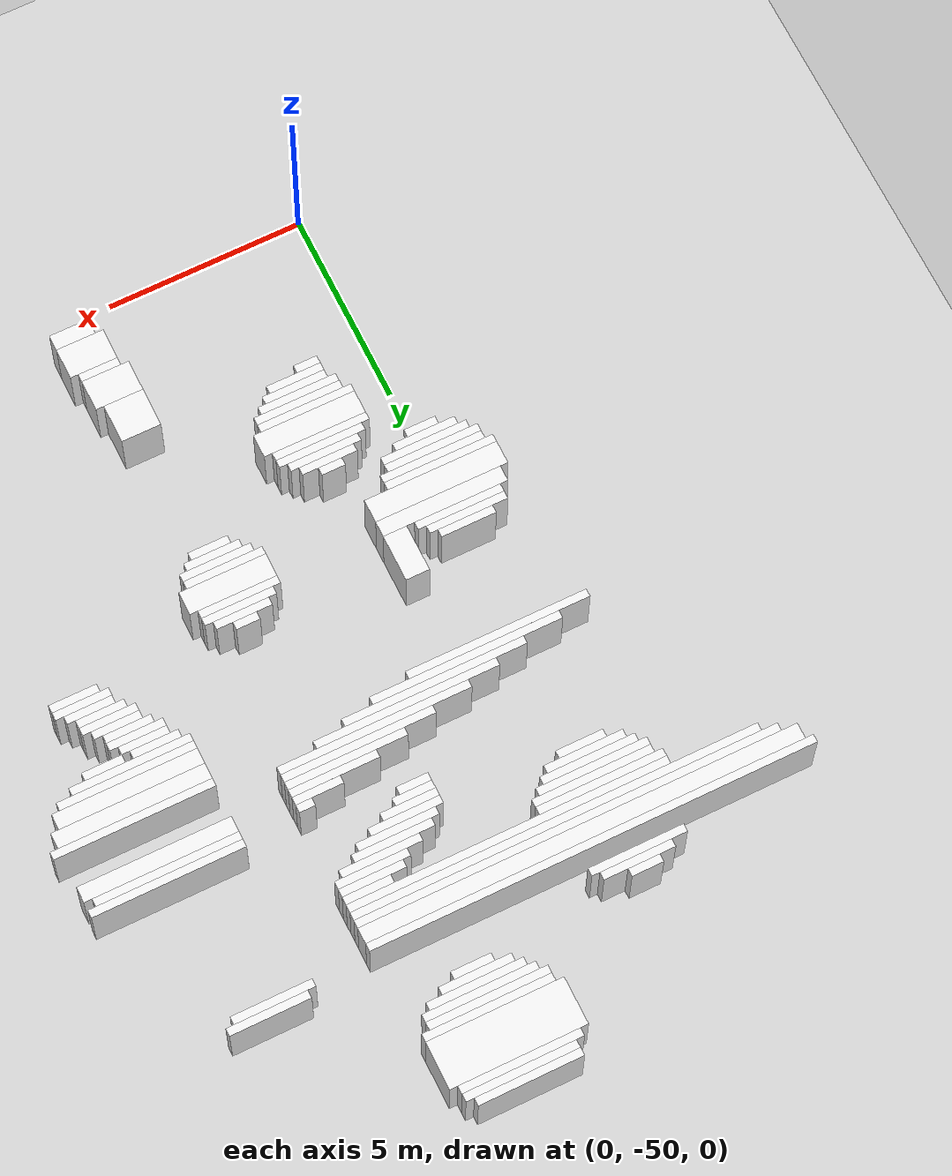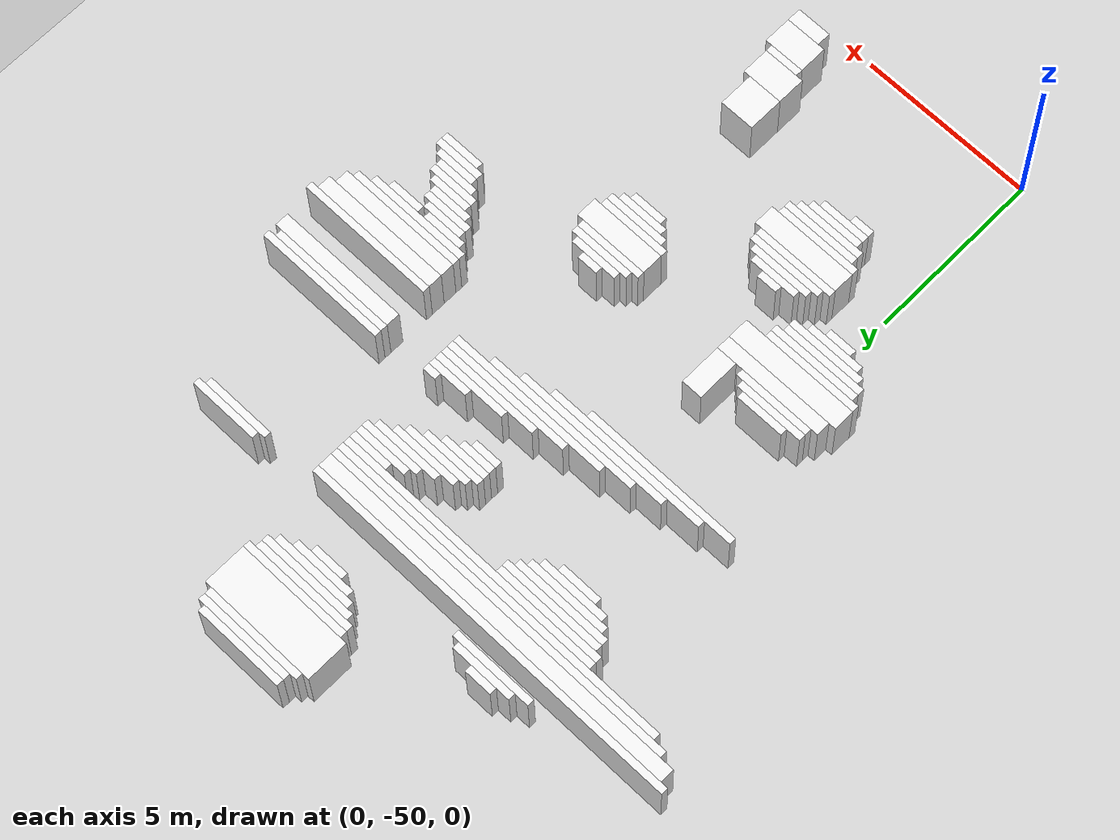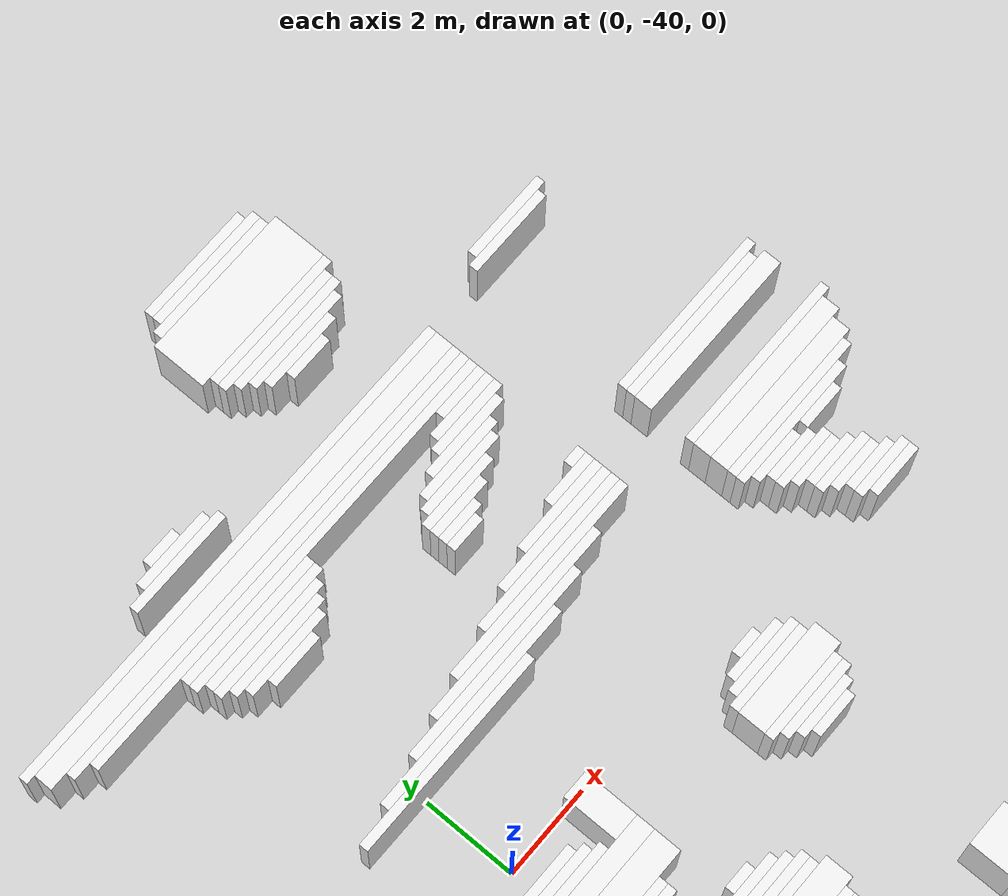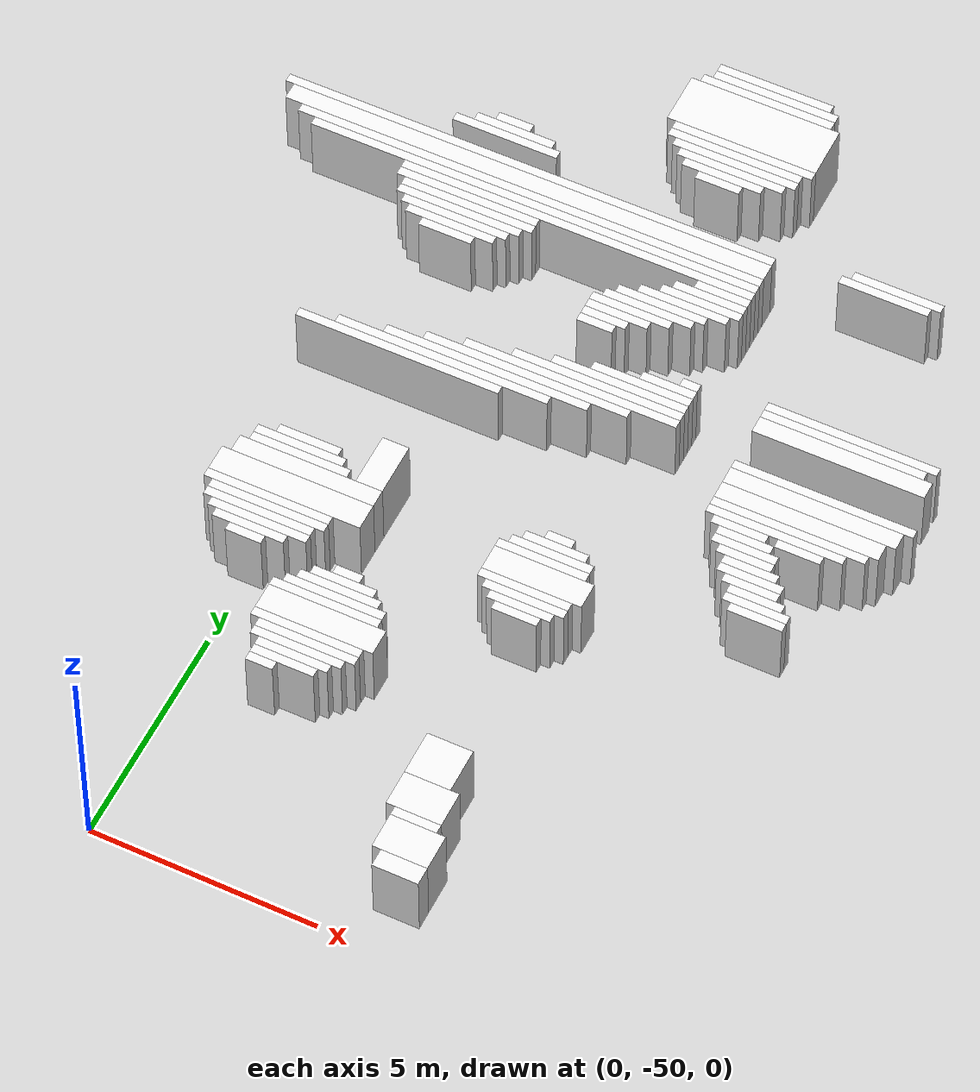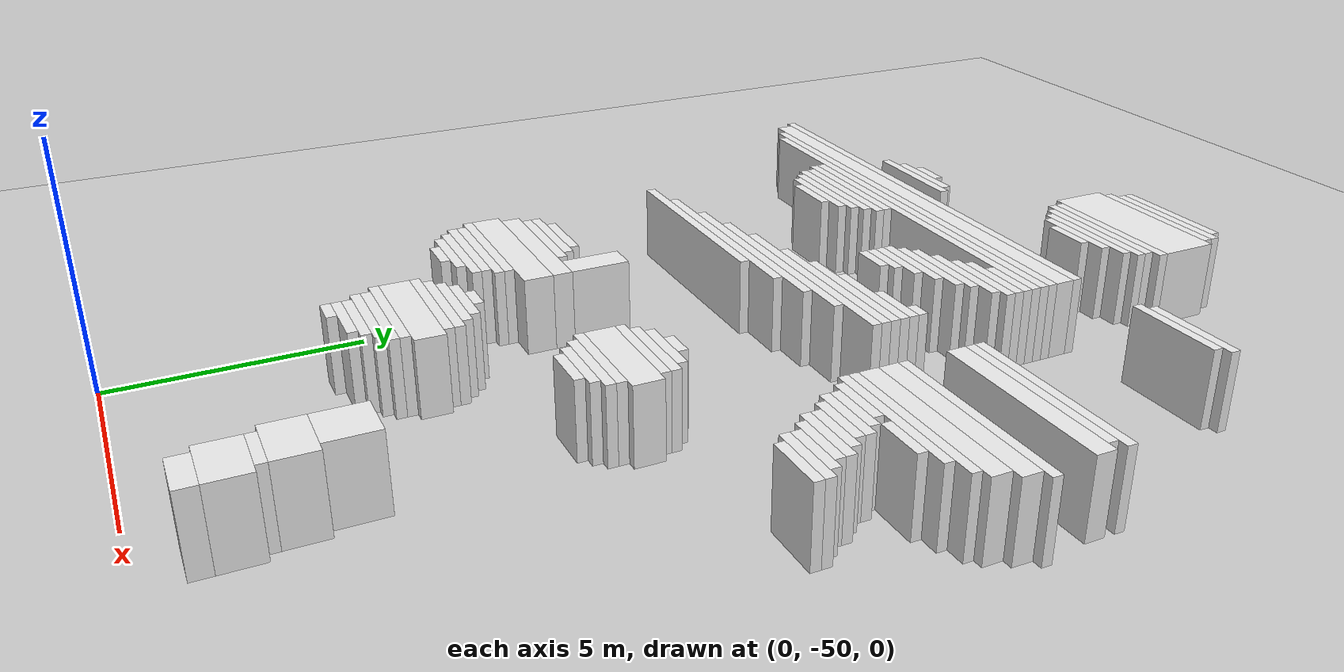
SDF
<sdf version="1.7">
 <world name="default">
  <model name="ground_plane">
   <static>1</static>
   <link name="link">
    <collision name="collision">
     <geometry><plane><normal>0 0 1</normal><size>120 120</size></plane></geometry>
    </collision>
    <visual name="visual">
     <geometry><plane><normal>0 0 1</normal><size>120 120</size></plane></geometry>
     <material>
      <script><uri>file://media/materials/scripts/gazebo.material</uri><name>Gazebo/Grey</name></script>
     </material>
    </visual>
   </link>
  </model>
  <model name="random_complex_01_model">
   <static>1</static>
   <link name="obs_2872">
    <pose>4.7000 -28.3000 0.8000 0 0 0</pose>
    <collision name="obs_2872_col"><geometry><box><size>2.6000 0.2000 1.6000</size></box></geometry></collision>
    <visual name="obs_2872_vis">
     <geometry><box><size>2.6000 0.2000 1.6000</size></box></geometry>
     <material>
      <script><uri>file://media/materials/scripts/gazebo.material</uri><name>Gazebo/White</name></script>
     </material>
    </visual>
   </link>
   <link name="obs_2881">
    <pose>4.8000 -28.5000 0.8000 0 0 0</pose>
    <collision name="obs_2881_col"><geometry><box><size>2.8000 0.2000 1.6000</size></box></geometry></collision>
    <visual name="obs_2881_vis">
     <geometry><box><size>2.8000 0.2000 1.6000</size></box></geometry>
     <material>
      <script><uri>file://media/materials/scripts/gazebo.material</uri><name>Gazebo/White</name></script>
     </material>
    </visual>
   </link>
   <link name="obs_2892">
    <pose>4.7000 -28.7000 0.8000 0 0 0</pose>
    <collision name="obs_2892_col"><geometry><box><size>3.0000 0.2000 1.6000</size></box></geometry></collision>
    <visual name="obs_2892_vis">
     <geometry><box><size>3.0000 0.2000 1.6000</size></box></geometry>
     <material>
      <script><uri>file://media/materials/scripts/gazebo.material</uri><name>Gazebo/White</name></script>
     </material>
    </visual>
   </link>
   <link name="obs_2928">
    <pose>4.7000 -29.4000 0.8000 0 0 0</pose>
    <collision name="obs_2928_col"><geometry><box><size>3.4000 1.2000 1.6000</size></box></geometry></collision>
    <visual name="obs_2928_vis">
     <geometry><box><size>3.4000 1.2000 1.6000</size></box></geometry>
     <material>
      <script><uri>file://media/materials/scripts/gazebo.material</uri><name>Gazebo/White</name></script>
     </material>
    </visual>
   </link>
   <link name="obs_2939">
    <pose>4.8000 -30.1000 0.8000 0 0 0</pose>
    <collision name="obs_2939_col"><geometry><box><size>3.2000 0.2000 1.6000</size></box></geometry></collision>
    <visual name="obs_2939_vis">
     <geometry><box><size>3.2000 0.2000 1.6000</size></box></geometry>
     <material>
      <script><uri>file://media/materials/scripts/gazebo.material</uri><name>Gazebo/White</name></script>
     </material>
    </visual>
   </link>
   <link name="obs_2945">
    <pose>4.7000 -30.3000 0.8000 0 0 0</pose>
    <collision name="obs_2945_col"><geometry><box><size>3.0000 0.2000 1.6000</size></box></geometry></collision>
    <visual name="obs_2945_vis">
     <geometry><box><size>3.0000 0.2000 1.6000</size></box></geometry>
     <material>
      <script><uri>file://media/materials/scripts/gazebo.material</uri><name>Gazebo/White</name></script>
     </material>
    </visual>
   </link>
   <link name="obs_2951">
    <pose>4.8000 -30.5000 0.8000 0 0 0</pose>
    <collision name="obs_2951_col"><geometry><box><size>2.8000 0.2000 1.6000</size></box></geometry></collision>
    <visual name="obs_2951_vis">
     <geometry><box><size>2.8000 0.2000 1.6000</size></box></geometry>
     <material>
      <script><uri>file://media/materials/scripts/gazebo.material</uri><name>Gazebo/White</name></script>
     </material>
    </visual>
   </link>
   <link name="obs_2959">
    <pose>4.8000 -30.7000 0.8000 0 0 0</pose>
    <collision name="obs_2959_col"><geometry><box><size>2.4000 0.2000 1.6000</size></box></geometry></collision>
    <visual name="obs_2959_vis">
     <geometry><box><size>2.4000 0.2000 1.6000</size></box></geometry>
     <material>
      <script><uri>file://media/materials/scripts/gazebo.material</uri><name>Gazebo/White</name></script>
     </material>
    </visual>
   </link>
   <link name="obs_2967">
    <pose>4.7000 -30.9000 0.8000 0 0 0</pose>
    <collision name="obs_2967_col"><geometry><box><size>1.8000 0.2000 1.6000</size></box></geometry></collision>
    <visual name="obs_2967_vis">
     <geometry><box><size>1.8000 0.2000 1.6000</size></box></geometry>
     <material>
      <script><uri>file://media/materials/scripts/gazebo.material</uri><name>Gazebo/White</name></script>
     </material>
    </visual>
   </link>
   <link name="obs_2973">
    <pose>4.7000 -31.1000 0.8000 0 0 0</pose>
    <collision name="obs_2973_col"><geometry><box><size>1.0000 0.2000 1.6000</size></box></geometry></collision>
    <visual name="obs_2973_vis">
     <geometry><box><size>1.0000 0.2000 1.6000</size></box></geometry>
     <material>
      <script><uri>file://media/materials/scripts/gazebo.material</uri><name>Gazebo/White</name></script>
     </material>
    </visual>
   </link>
   <link name="obs_2984">
    <pose>0.2000 -31.5000 0.8000 0 0 0</pose>
    <collision name="obs_2984_col"><geometry><box><size>0.8000 0.2000 1.6000</size></box></geometry></collision>
    <visual name="obs_2984_vis">
     <geometry><box><size>0.8000 0.2000 1.6000</size></box></geometry>
     <material>
      <script><uri>file://media/materials/scripts/gazebo.material</uri><name>Gazebo/White</name></script>
     </material>
    </visual>
   </link>
   <link name="obs_2989">
    <pose>0.3000 -31.7000 0.8000 0 0 0</pose>
    <collision name="obs_2989_col"><geometry><box><size>1.8000 0.2000 1.6000</size></box></geometry></collision>
    <visual name="obs_2989_vis">
     <geometry><box><size>1.8000 0.2000 1.6000</size></box></geometry>
     <material>
      <script><uri>file://media/materials/scripts/gazebo.material</uri><name>Gazebo/White</name></script>
     </material>
    </visual>
   </link>
   <link name="obs_2996">
    <pose>0.2000 -31.9000 0.8000 0 0 0</pose>
    <collision name="obs_2996_col"><geometry><box><size>2.4000 0.2000 1.6000</size></box></geometry></collision>
    <visual name="obs_2996_vis">
     <geometry><box><size>2.4000 0.2000 1.6000</size></box></geometry>
     <material>
      <script><uri>file://media/materials/scripts/gazebo.material</uri><name>Gazebo/White</name></script>
     </material>
    </visual>
   </link>
   <link name="obs_3003">
    <pose>9.2000 -32.1000 0.8000 0 0 0</pose>
    <collision name="obs_3003_col"><geometry><box><size>2.0000 0.2000 1.6000</size></box></geometry></collision>
    <visual name="obs_3003_vis">
     <geometry><box><size>2.0000 0.2000 1.6000</size></box></geometry>
     <material>
      <script><uri>file://media/materials/scripts/gazebo.material</uri><name>Gazebo/White</name></script>
     </material>
    </visual>
   </link>
   <link name="obs_3010">
    <pose>9.0000 -32.3000 0.8000 0 0 0</pose>
    <collision name="obs_3010_col"><geometry><box><size>2.0000 0.2000 1.6000</size></box></geometry></collision>
    <visual name="obs_3010_vis">
     <geometry><box><size>2.0000 0.2000 1.6000</size></box></geometry>
     <material>
      <script><uri>file://media/materials/scripts/gazebo.material</uri><name>Gazebo/White</name></script>
     </material>
    </visual>
   </link>
   <link name="obs_3019">
    <pose>1.0000 -32.5000 0.8000 0 0 0</pose>
    <collision name="obs_3019_col"><geometry><box><size>11.2000 0.2000 1.6000</size></box></geometry></collision>
    <visual name="obs_3019_vis">
     <geometry><box><size>11.2000 0.2000 1.6000</size></box></geometry>
     <material>
      <script><uri>file://media/materials/scripts/gazebo.material</uri><name>Gazebo/White</name></script>
     </material>
    </visual>
   </link>
   <link name="obs_3028">
    <pose>1.1000 -32.8000 0.8000 0 0 0</pose>
    <collision name="obs_3028_col"><geometry><box><size>11.0000 0.4000 1.6000</size></box></geometry></collision>
    <visual name="obs_3028_vis">
     <geometry><box><size>11.0000 0.4000 1.6000</size></box></geometry>
     <material>
      <script><uri>file://media/materials/scripts/gazebo.material</uri><name>Gazebo/White</name></script>
     </material>
    </visual>
   </link>
   <link name="obs_3040">
    <pose>1.3000 -33.1000 0.8000 0 0 0</pose>
    <collision name="obs_3040_col"><geometry><box><size>10.6000 0.2000 1.6000</size></box></geometry></collision>
    <visual name="obs_3040_vis">
     <geometry><box><size>10.6000 0.2000 1.6000</size></box></geometry>
     <material>
      <script><uri>file://media/materials/scripts/gazebo.material</uri><name>Gazebo/White</name></script>
     </material>
    </visual>
   </link>
   <link name="obs_3050">
    <pose>1.5000 -33.3000 0.8000 0 0 0</pose>
    <collision name="obs_3050_col"><geometry><box><size>10.2000 0.2000 1.6000</size></box></geometry></collision>
    <visual name="obs_3050_vis">
     <geometry><box><size>10.2000 0.2000 1.6000</size></box></geometry>
     <material>
      <script><uri>file://media/materials/scripts/gazebo.material</uri><name>Gazebo/White</name></script>
     </material>
    </visual>
   </link>
   <link name="obs_3057">
    <pose>2.6000 -33.5000 0.8000 0 0 0</pose>
    <collision name="obs_3057_col"><geometry><box><size>8.0000 0.2000 1.6000</size></box></geometry></collision>
    <visual name="obs_3057_vis">
     <geometry><box><size>8.0000 0.2000 1.6000</size></box></geometry>
     <material>
      <script><uri>file://media/materials/scripts/gazebo.material</uri><name>Gazebo/White</name></script>
     </material>
    </visual>
   </link>
   <link name="obs_3064">
    <pose>0.2000 -33.7000 0.8000 0 0 0</pose>
    <collision name="obs_3064_col"><geometry><box><size>3.2000 0.2000 1.6000</size></box></geometry></collision>
    <visual name="obs_3064_vis">
     <geometry><box><size>3.2000 0.2000 1.6000</size></box></geometry>
     <material>
      <script><uri>file://media/materials/scripts/gazebo.material</uri><name>Gazebo/White</name></script>
     </material>
    </visual>
   </link>
   <link name="obs_3065">
    <pose>6.0000 -33.7000 0.8000 0 0 0</pose>
    <collision name="obs_3065_col"><geometry><box><size>1.2000 0.2000 1.6000</size></box></geometry></collision>
    <visual name="obs_3065_vis">
     <geometry><box><size>1.2000 0.2000 1.6000</size></box></geometry>
     <material>
      <script><uri>file://media/materials/scripts/gazebo.material</uri><name>Gazebo/White</name></script>
     </material>
    </visual>
   </link>
   <link name="obs_3074">
    <pose>0.3000 -33.9000 0.8000 0 0 0</pose>
    <collision name="obs_3074_col"><geometry><box><size>3.0000 0.2000 1.6000</size></box></geometry></collision>
    <visual name="obs_3074_vis">
     <geometry><box><size>3.0000 0.2000 1.6000</size></box></geometry>
     <material>
      <script><uri>file://media/materials/scripts/gazebo.material</uri><name>Gazebo/White</name></script>
     </material>
    </visual>
   </link>
   <link name="obs_3075">
    <pose>5.8000 -33.9000 0.8000 0 0 0</pose>
    <collision name="obs_3075_col"><geometry><box><size>1.6000 0.2000 1.6000</size></box></geometry></collision>
    <visual name="obs_3075_vis">
     <geometry><box><size>1.6000 0.2000 1.6000</size></box></geometry>
     <material>
      <script><uri>file://media/materials/scripts/gazebo.material</uri><name>Gazebo/White</name></script>
     </material>
    </visual>
   </link>
   <link name="obs_3082">
    <pose>0.2000 -34.1000 0.8000 0 0 0</pose>
    <collision name="obs_3082_col"><geometry><box><size>2.8000 0.2000 1.6000</size></box></geometry></collision>
    <visual name="obs_3082_vis">
     <geometry><box><size>2.8000 0.2000 1.6000</size></box></geometry>
     <material>
      <script><uri>file://media/materials/scripts/gazebo.material</uri><name>Gazebo/White</name></script>
     </material>
    </visual>
   </link>
   <link name="obs_3083">
    <pose>5.7000 -34.1000 0.8000 0 0 0</pose>
    <collision name="obs_3083_col"><geometry><box><size>1.8000 0.2000 1.6000</size></box></geometry></collision>
    <visual name="obs_3083_vis">
     <geometry><box><size>1.8000 0.2000 1.6000</size></box></geometry>
     <material>
      <script><uri>file://media/materials/scripts/gazebo.material</uri><name>Gazebo/White</name></script>
     </material>
    </visual>
   </link>
   <link name="obs_3089">
    <pose>0.2000 -34.3000 0.8000 0 0 0</pose>
    <collision name="obs_3089_col"><geometry><box><size>2.4000 0.2000 1.6000</size></box></geometry></collision>
    <visual name="obs_3089_vis">
     <geometry><box><size>2.4000 0.2000 1.6000</size></box></geometry>
     <material>
      <script><uri>file://media/materials/scripts/gazebo.material</uri><name>Gazebo/White</name></script>
     </material>
    </visual>
   </link>
   <link name="obs_3090">
    <pose>5.4000 -34.3000 0.8000 0 0 0</pose>
    <collision name="obs_3090_col"><geometry><box><size>2.0000 0.2000 1.6000</size></box></geometry></collision>
    <visual name="obs_3090_vis">
     <geometry><box><size>2.0000 0.2000 1.6000</size></box></geometry>
     <material>
      <script><uri>file://media/materials/scripts/gazebo.material</uri><name>Gazebo/White</name></script>
     </material>
    </visual>
   </link>
   <link name="obs_3094">
    <pose>0.2000 -34.5000 0.8000 0 0 0</pose>
    <collision name="obs_3094_col"><geometry><box><size>2.0000 0.2000 1.6000</size></box></geometry></collision>
    <visual name="obs_3094_vis">
     <geometry><box><size>2.0000 0.2000 1.6000</size></box></geometry>
     <material>
      <script><uri>file://media/materials/scripts/gazebo.material</uri><name>Gazebo/White</name></script>
     </material>
    </visual>
   </link>
   <link name="obs_3095">
    <pose>5.0000 -34.5000 0.8000 0 0 0</pose>
    <collision name="obs_3095_col"><geometry><box><size>2.0000 0.2000 1.6000</size></box></geometry></collision>
    <visual name="obs_3095_vis">
     <geometry><box><size>2.0000 0.2000 1.6000</size></box></geometry>
     <material>
      <script><uri>file://media/materials/scripts/gazebo.material</uri><name>Gazebo/White</name></script>
     </material>
    </visual>
   </link>
   <link name="obs_3100">
    <pose>0.2000 -34.7000 0.8000 0 0 0</pose>
    <collision name="obs_3100_col"><geometry><box><size>1.2000 0.2000 1.6000</size></box></geometry></collision>
    <visual name="obs_3100_vis">
     <geometry><box><size>1.2000 0.2000 1.6000</size></box></geometry>
     <material>
      <script><uri>file://media/materials/scripts/gazebo.material</uri><name>Gazebo/White</name></script>
     </material>
    </visual>
   </link>
   <link name="obs_3101">
    <pose>4.8000 -34.7000 0.8000 0 0 0</pose>
    <collision name="obs_3101_col"><geometry><box><size>2.0000 0.2000 1.6000</size></box></geometry></collision>
    <visual name="obs_3101_vis">
     <geometry><box><size>2.0000 0.2000 1.6000</size></box></geometry>
     <material>
      <script><uri>file://media/materials/scripts/gazebo.material</uri><name>Gazebo/White</name></script>
     </material>
    </visual>
   </link>
   <link name="obs_3112">
    <pose>4.5000 -34.9000 0.8000 0 0 0</pose>
    <collision name="obs_3112_col"><geometry><box><size>1.8000 0.2000 1.6000</size></box></geometry></collision>
    <visual name="obs_3112_vis">
     <geometry><box><size>1.8000 0.2000 1.6000</size></box></geometry>
     <material>
      <script><uri>file://media/materials/scripts/gazebo.material</uri><name>Gazebo/White</name></script>
     </material>
    </visual>
   </link>
   <link name="obs_3118">
    <pose>4.3000 -35.1000 0.8000 0 0 0</pose>
    <collision name="obs_3118_col"><geometry><box><size>1.4000 0.2000 1.6000</size></box></geometry></collision>
    <visual name="obs_3118_vis">
     <geometry><box><size>1.4000 0.2000 1.6000</size></box></geometry>
     <material>
      <script><uri>file://media/materials/scripts/gazebo.material</uri><name>Gazebo/White</name></script>
     </material>
    </visual>
   </link>
   <link name="obs_3125">
    <pose>4.1000 -35.3000 0.8000 0 0 0</pose>
    <collision name="obs_3125_col"><geometry><box><size>1.0000 0.2000 1.6000</size></box></geometry></collision>
    <visual name="obs_3125_vis">
     <geometry><box><size>1.0000 0.2000 1.6000</size></box></geometry>
     <material>
      <script><uri>file://media/materials/scripts/gazebo.material</uri><name>Gazebo/White</name></script>
     </material>
    </visual>
   </link>
   <link name="obs_3134">
    <pose>4.0000 -35.5000 0.8000 0 0 0</pose>
    <collision name="obs_3134_col"><geometry><box><size>0.8000 0.2000 1.6000</size></box></geometry></collision>
    <visual name="obs_3134_vis">
     <geometry><box><size>0.8000 0.2000 1.6000</size></box></geometry>
     <material>
      <script><uri>file://media/materials/scripts/gazebo.material</uri><name>Gazebo/White</name></script>
     </material>
    </visual>
   </link>
   <link name="obs_3150">
    <pose>9.9000 -35.9000 0.8000 0 0 0</pose>
    <collision name="obs_3150_col"><geometry><box><size>3.8000 0.2000 1.6000</size></box></geometry></collision>
    <visual name="obs_3150_vis">
     <geometry><box><size>3.8000 0.2000 1.6000</size></box></geometry>
     <material>
      <script><uri>file://media/materials/scripts/gazebo.material</uri><name>Gazebo/White</name></script>
     </material>
    </visual>
   </link>
   <link name="obs_3159">
    <pose>6.4000 -36.1000 0.8000 0 0 0</pose>
    <collision name="obs_3159_col"><geometry><box><size>0.4000 0.2000 1.6000</size></box></geometry></collision>
    <visual name="obs_3159_vis">
     <geometry><box><size>0.4000 0.2000 1.6000</size></box></geometry>
     <material>
      <script><uri>file://media/materials/scripts/gazebo.material</uri><name>Gazebo/White</name></script>
     </material>
    </visual>
   </link>
   <link name="obs_3160">
    <pose>9.8000 -36.1000 0.8000 0 0 0</pose>
    <collision name="obs_3160_col"><geometry><box><size>3.6000 0.2000 1.6000</size></box></geometry></collision>
    <visual name="obs_3160_vis">
     <geometry><box><size>3.6000 0.2000 1.6000</size></box></geometry>
     <material>
      <script><uri>file://media/materials/scripts/gazebo.material</uri><name>Gazebo/White</name></script>
     </material>
    </visual>
   </link>
   <link name="obs_3166">
    <pose>6.0000 -36.3000 0.8000 0 0 0</pose>
    <collision name="obs_3166_col"><geometry><box><size>1.2000 0.2000 1.6000</size></box></geometry></collision>
    <visual name="obs_3166_vis">
     <geometry><box><size>1.2000 0.2000 1.6000</size></box></geometry>
     <material>
      <script><uri>file://media/materials/scripts/gazebo.material</uri><name>Gazebo/White</name></script>
     </material>
    </visual>
   </link>
   <link name="obs_3168">
    <pose>9.9000 -36.4000 0.8000 0 0 0</pose>
    <collision name="obs_3168_col"><geometry><box><size>3.8000 0.4000 1.6000</size></box></geometry></collision>
    <visual name="obs_3168_vis">
     <geometry><box><size>3.8000 0.4000 1.6000</size></box></geometry>
     <material>
      <script><uri>file://media/materials/scripts/gazebo.material</uri><name>Gazebo/White</name></script>
     </material>
    </visual>
   </link>
   <link name="obs_3172">
    <pose>5.5000 -36.5000 0.8000 0 0 0</pose>
    <collision name="obs_3172_col"><geometry><box><size>2.2000 0.2000 1.6000</size></box></geometry></collision>
    <visual name="obs_3172_vis">
     <geometry><box><size>2.2000 0.2000 1.6000</size></box></geometry>
     <material>
      <script><uri>file://media/materials/scripts/gazebo.material</uri><name>Gazebo/White</name></script>
     </material>
    </visual>
   </link>
   <link name="obs_3179">
    <pose>5.1000 -36.7000 0.8000 0 0 0</pose>
    <collision name="obs_3179_col"><geometry><box><size>3.0000 0.2000 1.6000</size></box></geometry></collision>
    <visual name="obs_3179_vis">
     <geometry><box><size>3.0000 0.2000 1.6000</size></box></geometry>
     <material>
      <script><uri>file://media/materials/scripts/gazebo.material</uri><name>Gazebo/White</name></script>
     </material>
    </visual>
   </link>
   <link name="obs_3186">
    <pose>4.7000 -36.9000 0.8000 0 0 0</pose>
    <collision name="obs_3186_col"><geometry><box><size>3.8000 0.2000 1.6000</size></box></geometry></collision>
    <visual name="obs_3186_vis">
     <geometry><box><size>3.8000 0.2000 1.6000</size></box></geometry>
     <material>
      <script><uri>file://media/materials/scripts/gazebo.material</uri><name>Gazebo/White</name></script>
     </material>
    </visual>
   </link>
   <link name="obs_3191">
    <pose>4.2000 -37.1000 0.8000 0 0 0</pose>
    <collision name="obs_3191_col"><geometry><box><size>4.8000 0.2000 1.6000</size></box></geometry></collision>
    <visual name="obs_3191_vis">
     <geometry><box><size>4.8000 0.2000 1.6000</size></box></geometry>
     <material>
      <script><uri>file://media/materials/scripts/gazebo.material</uri><name>Gazebo/White</name></script>
     </material>
    </visual>
   </link>
   <link name="obs_3201">
    <pose>3.3000 -37.3000 0.8000 0 0 0</pose>
    <collision name="obs_3201_col"><geometry><box><size>4.6000 0.2000 1.6000</size></box></geometry></collision>
    <visual name="obs_3201_vis">
     <geometry><box><size>4.6000 0.2000 1.6000</size></box></geometry>
     <material>
      <script><uri>file://media/materials/scripts/gazebo.material</uri><name>Gazebo/White</name></script>
     </material>
    </visual>
   </link>
   <link name="obs_3207">
    <pose>2.5000 -37.5000 0.8000 0 0 0</pose>
    <collision name="obs_3207_col"><geometry><box><size>4.6000 0.2000 1.6000</size></box></geometry></collision>
    <visual name="obs_3207_vis">
     <geometry><box><size>4.6000 0.2000 1.6000</size></box></geometry>
     <material>
      <script><uri>file://media/materials/scripts/gazebo.material</uri><name>Gazebo/White</name></script>
     </material>
    </visual>
   </link>
   <link name="obs_3208">
    <pose>10.0000 -37.5000 0.8000 0 0 0</pose>
    <collision name="obs_3208_col"><geometry><box><size>4.0000 0.2000 1.6000</size></box></geometry></collision>
    <visual name="obs_3208_vis">
     <geometry><box><size>4.0000 0.2000 1.6000</size></box></geometry>
     <material>
      <script><uri>file://media/materials/scripts/gazebo.material</uri><name>Gazebo/White</name></script>
     </material>
    </visual>
   </link>
   <link name="obs_3215">
    <pose>1.6000 -37.7000 0.8000 0 0 0</pose>
    <collision name="obs_3215_col"><geometry><box><size>4.8000 0.2000 1.6000</size></box></geometry></collision>
    <visual name="obs_3215_vis">
     <geometry><box><size>4.8000 0.2000 1.6000</size></box></geometry>
     <material>
      <script><uri>file://media/materials/scripts/gazebo.material</uri><name>Gazebo/White</name></script>
     </material>
    </visual>
   </link>
   <link name="obs_3219">
    <pose>9.9000 -37.8000 0.8000 0 0 0</pose>
    <collision name="obs_3219_col"><geometry><box><size>3.8000 0.4000 1.6000</size></box></geometry></collision>
    <visual name="obs_3219_vis">
     <geometry><box><size>3.8000 0.4000 1.6000</size></box></geometry>
     <material>
      <script><uri>file://media/materials/scripts/gazebo.material</uri><name>Gazebo/White</name></script>
     </material>
    </visual>
   </link>
   <link name="obs_3224">
    <pose>0.7000 -37.9000 0.8000 0 0 0</pose>
    <collision name="obs_3224_col"><geometry><box><size>4.6000 0.2000 1.6000</size></box></geometry></collision>
    <visual name="obs_3224_vis">
     <geometry><box><size>4.6000 0.2000 1.6000</size></box></geometry>
     <material>
      <script><uri>file://media/materials/scripts/gazebo.material</uri><name>Gazebo/White</name></script>
     </material>
    </visual>
   </link>
   <link name="obs_3235">
    <pose>9.8000 -38.2000 0.8000 0 0 0</pose>
    <collision name="obs_3235_col"><geometry><box><size>3.6000 0.4000 1.6000</size></box></geometry></collision>
    <visual name="obs_3235_vis">
     <geometry><box><size>3.6000 0.4000 1.6000</size></box></geometry>
     <material>
      <script><uri>file://media/materials/scripts/gazebo.material</uri><name>Gazebo/White</name></script>
     </material>
    </visual>
   </link>
   <link name="obs_3250">
    <pose>9.7000 -38.5000 0.8000 0 0 0</pose>
    <collision name="obs_3250_col"><geometry><box><size>3.4000 0.2000 1.6000</size></box></geometry></collision>
    <visual name="obs_3250_vis">
     <geometry><box><size>3.4000 0.2000 1.6000</size></box></geometry>
     <material>
      <script><uri>file://media/materials/scripts/gazebo.material</uri><name>Gazebo/White</name></script>
     </material>
    </visual>
   </link>
   <link name="obs_3255">
    <pose>9.5000 -38.7000 0.8000 0 0 0</pose>
    <collision name="obs_3255_col"><geometry><box><size>3.0000 0.2000 1.6000</size></box></geometry></collision>
    <visual name="obs_3255_vis">
     <geometry><box><size>3.0000 0.2000 1.6000</size></box></geometry>
     <material>
      <script><uri>file://media/materials/scripts/gazebo.material</uri><name>Gazebo/White</name></script>
     </material>
    </visual>
   </link>
   <link name="obs_3262">
    <pose>8.8000 -38.9000 0.8000 0 0 0</pose>
    <collision name="obs_3262_col"><geometry><box><size>1.2000 0.2000 1.6000</size></box></geometry></collision>
    <visual name="obs_3262_vis">
     <geometry><box><size>1.2000 0.2000 1.6000</size></box></geometry>
     <material>
      <script><uri>file://media/materials/scripts/gazebo.material</uri><name>Gazebo/White</name></script>
     </material>
    </visual>
   </link>
   <link name="obs_3263">
    <pose>10.1000 -38.9000 0.8000 0 0 0</pose>
    <collision name="obs_3263_col"><geometry><box><size>1.0000 0.2000 1.6000</size></box></geometry></collision>
    <visual name="obs_3263_vis">
     <geometry><box><size>1.0000 0.2000 1.6000</size></box></geometry>
     <material>
      <script><uri>file://media/materials/scripts/gazebo.material</uri><name>Gazebo/White</name></script>
     </material>
    </visual>
   </link>
   <link name="obs_3270">
    <pose>9.0000 -39.1000 0.8000 0 0 0</pose>
    <collision name="obs_3270_col"><geometry><box><size>1.2000 0.2000 1.6000</size></box></geometry></collision>
    <visual name="obs_3270_vis">
     <geometry><box><size>1.2000 0.2000 1.6000</size></box></geometry>
     <material>
      <script><uri>file://media/materials/scripts/gazebo.material</uri><name>Gazebo/White</name></script>
     </material>
    </visual>
   </link>
   <link name="obs_3278">
    <pose>9.1000 -39.3000 0.8000 0 0 0</pose>
    <collision name="obs_3278_col"><geometry><box><size>1.4000 0.2000 1.6000</size></box></geometry></collision>
    <visual name="obs_3278_vis">
     <geometry><box><size>1.4000 0.2000 1.6000</size></box></geometry>
     <material>
      <script><uri>file://media/materials/scripts/gazebo.material</uri><name>Gazebo/White</name></script>
     </material>
    </visual>
   </link>
   <link name="obs_3282">
    <pose>9.2000 -39.5000 0.8000 0 0 0</pose>
    <collision name="obs_3282_col"><geometry><box><size>1.2000 0.2000 1.6000</size></box></geometry></collision>
    <visual name="obs_3282_vis">
     <geometry><box><size>1.2000 0.2000 1.6000</size></box></geometry>
     <material>
      <script><uri>file://media/materials/scripts/gazebo.material</uri><name>Gazebo/White</name></script>
     </material>
    </visual>
   </link>
   <link name="obs_3290">
    <pose>9.4000 -39.7000 0.8000 0 0 0</pose>
    <collision name="obs_3290_col"><geometry><box><size>1.2000 0.2000 1.6000</size></box></geometry></collision>
    <visual name="obs_3290_vis">
     <geometry><box><size>1.2000 0.2000 1.6000</size></box></geometry>
     <material>
      <script><uri>file://media/materials/scripts/gazebo.material</uri><name>Gazebo/White</name></script>
     </material>
    </visual>
   </link>
   <link name="obs_3296">
    <pose>9.5000 -39.9000 0.8000 0 0 0</pose>
    <collision name="obs_3296_col"><geometry><box><size>1.4000 0.2000 1.6000</size></box></geometry></collision>
    <visual name="obs_3296_vis">
     <geometry><box><size>1.4000 0.2000 1.6000</size></box></geometry>
     <material>
      <script><uri>file://media/materials/scripts/gazebo.material</uri><name>Gazebo/White</name></script>
     </material>
    </visual>
   </link>
   <link name="obs_3303">
    <pose>9.6000 -40.1000 0.8000 0 0 0</pose>
    <collision name="obs_3303_col"><geometry><box><size>1.2000 0.2000 1.6000</size></box></geometry></collision>
    <visual name="obs_3303_vis">
     <geometry><box><size>1.2000 0.2000 1.6000</size></box></geometry>
     <material>
      <script><uri>file://media/materials/scripts/gazebo.material</uri><name>Gazebo/White</name></script>
     </material>
    </visual>
   </link>
   <link name="obs_3311">
    <pose>9.8000 -40.3000 0.8000 0 0 0</pose>
    <collision name="obs_3311_col"><geometry><box><size>1.2000 0.2000 1.6000</size></box></geometry></collision>
    <visual name="obs_3311_vis">
     <geometry><box><size>1.2000 0.2000 1.6000</size></box></geometry>
     <material>
      <script><uri>file://media/materials/scripts/gazebo.material</uri><name>Gazebo/White</name></script>
     </material>
    </visual>
   </link>
   <link name="obs_3319">
    <pose>9.9000 -40.5000 0.8000 0 0 0</pose>
    <collision name="obs_3319_col"><geometry><box><size>1.4000 0.2000 1.6000</size></box></geometry></collision>
    <visual name="obs_3319_vis">
     <geometry><box><size>1.4000 0.2000 1.6000</size></box></geometry>
     <material>
      <script><uri>file://media/materials/scripts/gazebo.material</uri><name>Gazebo/White</name></script>
     </material>
    </visual>
   </link>
   <link name="obs_3327">
    <pose>0.1000 -40.7000 0.8000 0 0 0</pose>
    <collision name="obs_3327_col"><geometry><box><size>1.4000 0.2000 1.6000</size></box></geometry></collision>
    <visual name="obs_3327_vis">
     <geometry><box><size>1.4000 0.2000 1.6000</size></box></geometry>
     <material>
      <script><uri>file://media/materials/scripts/gazebo.material</uri><name>Gazebo/White</name></script>
     </material>
    </visual>
   </link>
   <link name="obs_3328">
    <pose>5.7000 -40.7000 0.8000 0 0 0</pose>
    <collision name="obs_3328_col"><geometry><box><size>0.6000 0.2000 1.6000</size></box></geometry></collision>
    <visual name="obs_3328_vis">
     <geometry><box><size>0.6000 0.2000 1.6000</size></box></geometry>
     <material>
      <script><uri>file://media/materials/scripts/gazebo.material</uri><name>Gazebo/White</name></script>
     </material>
    </visual>
   </link>
   <link name="obs_3329">
    <pose>10.0000 -40.7000 0.8000 0 0 0</pose>
    <collision name="obs_3329_col"><geometry><box><size>1.2000 0.2000 1.6000</size></box></geometry></collision>
    <visual name="obs_3329_vis">
     <geometry><box><size>1.2000 0.2000 1.6000</size></box></geometry>
     <material>
      <script><uri>file://media/materials/scripts/gazebo.material</uri><name>Gazebo/White</name></script>
     </material>
    </visual>
   </link>
   <link name="obs_3336">
    <pose>0.0000 -40.9000 0.8000 0 0 0</pose>
    <collision name="obs_3336_col"><geometry><box><size>2.0000 0.2000 1.6000</size></box></geometry></collision>
    <visual name="obs_3336_vis">
     <geometry><box><size>2.0000 0.2000 1.6000</size></box></geometry>
     <material>
      <script><uri>file://media/materials/scripts/gazebo.material</uri><name>Gazebo/White</name></script>
     </material>
    </visual>
   </link>
   <link name="obs_3337">
    <pose>5.7000 -40.9000 0.8000 0 0 0</pose>
    <collision name="obs_3337_col"><geometry><box><size>1.4000 0.2000 1.6000</size></box></geometry></collision>
    <visual name="obs_3337_vis">
     <geometry><box><size>1.4000 0.2000 1.6000</size></box></geometry>
     <material>
      <script><uri>file://media/materials/scripts/gazebo.material</uri><name>Gazebo/White</name></script>
     </material>
    </visual>
   </link>
   <link name="obs_3340">
    <pose>1.7000 -40.6000 0.8000 0 0 0</pose>
    <collision name="obs_3340_col"><geometry><box><size>0.6000 1.2000 1.6000</size></box></geometry></collision>
    <visual name="obs_3340_vis">
     <geometry><box><size>0.6000 1.2000 1.6000</size></box></geometry>
     <material>
      <script><uri>file://media/materials/scripts/gazebo.material</uri><name>Gazebo/White</name></script>
     </material>
    </visual>
   </link>
   <link name="obs_3343">
    <pose>0.1000 -41.1000 0.8000 0 0 0</pose>
    <collision name="obs_3343_col"><geometry><box><size>2.2000 0.2000 1.6000</size></box></geometry></collision>
    <visual name="obs_3343_vis">
     <geometry><box><size>2.2000 0.2000 1.6000</size></box></geometry>
     <material>
      <script><uri>file://media/materials/scripts/gazebo.material</uri><name>Gazebo/White</name></script>
     </material>
    </visual>
   </link>
   <link name="obs_3344">
    <pose>5.7000 -41.1000 0.8000 0 0 0</pose>
    <collision name="obs_3344_col"><geometry><box><size>1.8000 0.2000 1.6000</size></box></geometry></collision>
    <visual name="obs_3344_vis">
     <geometry><box><size>1.8000 0.2000 1.6000</size></box></geometry>
     <material>
      <script><uri>file://media/materials/scripts/gazebo.material</uri><name>Gazebo/White</name></script>
     </material>
    </visual>
   </link>
   <link name="obs_3350">
    <pose>5.6000 -41.3000 0.8000 0 0 0</pose>
    <collision name="obs_3350_col"><geometry><box><size>2.0000 0.2000 1.6000</size></box></geometry></collision>
    <visual name="obs_3350_vis">
     <geometry><box><size>2.0000 0.2000 1.6000</size></box></geometry>
     <material>
      <script><uri>file://media/materials/scripts/gazebo.material</uri><name>Gazebo/White</name></script>
     </material>
    </visual>
   </link>
   <link name="obs_3356">
    <pose>0.4000 -41.4000 0.8000 0 0 0</pose>
    <collision name="obs_3356_col"><geometry><box><size>3.2000 0.4000 1.6000</size></box></geometry></collision>
    <visual name="obs_3356_vis">
     <geometry><box><size>3.2000 0.4000 1.6000</size></box></geometry>
     <material>
      <script><uri>file://media/materials/scripts/gazebo.material</uri><name>Gazebo/White</name></script>
     </material>
    </visual>
   </link>
   <link name="obs_3369">
    <pose>5.7000 -41.7000 0.8000 0 0 0</pose>
    <collision name="obs_3369_col"><geometry><box><size>2.2000 0.6000 1.6000</size></box></geometry></collision>
    <visual name="obs_3369_vis">
     <geometry><box><size>2.2000 0.6000 1.6000</size></box></geometry>
     <material>
      <script><uri>file://media/materials/scripts/gazebo.material</uri><name>Gazebo/White</name></script>
     </material>
    </visual>
   </link>
   <link name="obs_3378">
    <pose>0.3000 -41.9000 0.8000 0 0 0</pose>
    <collision name="obs_3378_col"><geometry><box><size>3.4000 0.6000 1.6000</size></box></geometry></collision>
    <visual name="obs_3378_vis">
     <geometry><box><size>3.4000 0.6000 1.6000</size></box></geometry>
     <material>
      <script><uri>file://media/materials/scripts/gazebo.material</uri><name>Gazebo/White</name></script>
     </material>
    </visual>
   </link>
   <link name="obs_3382">
    <pose>5.6000 -42.1000 0.8000 0 0 0</pose>
    <collision name="obs_3382_col"><geometry><box><size>2.0000 0.2000 1.6000</size></box></geometry></collision>
    <visual name="obs_3382_vis">
     <geometry><box><size>2.0000 0.2000 1.6000</size></box></geometry>
     <material>
      <script><uri>file://media/materials/scripts/gazebo.material</uri><name>Gazebo/White</name></script>
     </material>
    </visual>
   </link>
   <link name="obs_3390">
    <pose>0.0000 -42.3000 0.8000 0 0 0</pose>
    <collision name="obs_3390_col"><geometry><box><size>2.8000 0.2000 1.6000</size></box></geometry></collision>
    <visual name="obs_3390_vis">
     <geometry><box><size>2.8000 0.2000 1.6000</size></box></geometry>
     <material>
      <script><uri>file://media/materials/scripts/gazebo.material</uri><name>Gazebo/White</name></script>
     </material>
    </visual>
   </link>
   <link name="obs_3391">
    <pose>5.7000 -42.3000 0.8000 0 0 0</pose>
    <collision name="obs_3391_col"><geometry><box><size>1.8000 0.2000 1.6000</size></box></geometry></collision>
    <visual name="obs_3391_vis">
     <geometry><box><size>1.8000 0.2000 1.6000</size></box></geometry>
     <material>
      <script><uri>file://media/materials/scripts/gazebo.material</uri><name>Gazebo/White</name></script>
     </material>
    </visual>
   </link>
   <link name="obs_3398">
    <pose>0.1000 -42.5000 0.8000 0 0 0</pose>
    <collision name="obs_3398_col"><geometry><box><size>2.6000 0.2000 1.6000</size></box></geometry></collision>
    <visual name="obs_3398_vis">
     <geometry><box><size>2.6000 0.2000 1.6000</size></box></geometry>
     <material>
      <script><uri>file://media/materials/scripts/gazebo.material</uri><name>Gazebo/White</name></script>
     </material>
    </visual>
   </link>
   <link name="obs_3399">
    <pose>5.7000 -42.5000 0.8000 0 0 0</pose>
    <collision name="obs_3399_col"><geometry><box><size>1.4000 0.2000 1.6000</size></box></geometry></collision>
    <visual name="obs_3399_vis">
     <geometry><box><size>1.4000 0.2000 1.6000</size></box></geometry>
     <material>
      <script><uri>file://media/materials/scripts/gazebo.material</uri><name>Gazebo/White</name></script>
     </material>
    </visual>
   </link>
   <link name="obs_3406">
    <pose>0.0000 -42.7000 0.8000 0 0 0</pose>
    <collision name="obs_3406_col"><geometry><box><size>2.4000 0.2000 1.6000</size></box></geometry></collision>
    <visual name="obs_3406_vis">
     <geometry><box><size>2.4000 0.2000 1.6000</size></box></geometry>
     <material>
      <script><uri>file://media/materials/scripts/gazebo.material</uri><name>Gazebo/White</name></script>
     </material>
    </visual>
   </link>
   <link name="obs_3407">
    <pose>5.7000 -42.7000 0.8000 0 0 0</pose>
    <collision name="obs_3407_col"><geometry><box><size>1.0000 0.2000 1.6000</size></box></geometry></collision>
    <visual name="obs_3407_vis">
     <geometry><box><size>1.0000 0.2000 1.6000</size></box></geometry>
     <material>
      <script><uri>file://media/materials/scripts/gazebo.material</uri><name>Gazebo/White</name></script>
     </material>
    </visual>
   </link>
   <link name="obs_3413">
    <pose>0.1000 -42.9000 0.8000 0 0 0</pose>
    <collision name="obs_3413_col"><geometry><box><size>2.2000 0.2000 1.6000</size></box></geometry></collision>
    <visual name="obs_3413_vis">
     <geometry><box><size>2.2000 0.2000 1.6000</size></box></geometry>
     <material>
      <script><uri>file://media/materials/scripts/gazebo.material</uri><name>Gazebo/White</name></script>
     </material>
    </visual>
   </link>
   <link name="obs_3418">
    <pose>0.0000 -43.1000 0.8000 0 0 0</pose>
    <collision name="obs_3418_col"><geometry><box><size>1.6000 0.2000 1.6000</size></box></geometry></collision>
    <visual name="obs_3418_vis">
     <geometry><box><size>1.6000 0.2000 1.6000</size></box></geometry>
     <material>
      <script><uri>file://media/materials/scripts/gazebo.material</uri><name>Gazebo/White</name></script>
     </material>
    </visual>
   </link>
   <link name="obs_3424">
    <pose>0.0000 -43.3000 0.8000 0 0 0</pose>
    <collision name="obs_3424_col"><geometry><box><size>0.8000 0.2000 1.6000</size></box></geometry></collision>
    <visual name="obs_3424_vis">
     <geometry><box><size>0.8000 0.2000 1.6000</size></box></geometry>
     <material>
      <script><uri>file://media/materials/scripts/gazebo.material</uri><name>Gazebo/White</name></script>
     </material>
    </visual>
   </link>
   <link name="obs_3425">
    <pose>2.3000 -43.3000 0.8000 0 0 0</pose>
    <collision name="obs_3425_col"><geometry><box><size>0.6000 0.2000 1.6000</size></box></geometry></collision>
    <visual name="obs_3425_vis">
     <geometry><box><size>0.6000 0.2000 1.6000</size></box></geometry>
     <material>
      <script><uri>file://media/materials/scripts/gazebo.material</uri><name>Gazebo/White</name></script>
     </material>
    </visual>
   </link>
   <link name="obs_3431">
    <pose>2.3000 -43.5000 0.8000 0 0 0</pose>
    <collision name="obs_3431_col"><geometry><box><size>1.4000 0.2000 1.6000</size></box></geometry></collision>
    <visual name="obs_3431_vis">
     <geometry><box><size>1.4000 0.2000 1.6000</size></box></geometry>
     <material>
      <script><uri>file://media/materials/scripts/gazebo.material</uri><name>Gazebo/White</name></script>
     </material>
    </visual>
   </link>
   <link name="obs_3436">
    <pose>2.3000 -43.7000 0.8000 0 0 0</pose>
    <collision name="obs_3436_col"><geometry><box><size>1.8000 0.2000 1.6000</size></box></geometry></collision>
    <visual name="obs_3436_vis">
     <geometry><box><size>1.8000 0.2000 1.6000</size></box></geometry>
     <material>
      <script><uri>file://media/materials/scripts/gazebo.material</uri><name>Gazebo/White</name></script>
     </material>
    </visual>
   </link>
   <link name="obs_3441">
    <pose>2.3000 -43.9000 0.8000 0 0 0</pose>
    <collision name="obs_3441_col"><geometry><box><size>2.2000 0.2000 1.6000</size></box></geometry></collision>
    <visual name="obs_3441_vis">
     <geometry><box><size>2.2000 0.2000 1.6000</size></box></geometry>
     <material>
      <script><uri>file://media/materials/scripts/gazebo.material</uri><name>Gazebo/White</name></script>
     </material>
    </visual>
   </link>
   <link name="obs_3447">
    <pose>2.2000 -44.1000 0.8000 0 0 0</pose>
    <collision name="obs_3447_col"><geometry><box><size>2.4000 0.2000 1.6000</size></box></geometry></collision>
    <visual name="obs_3447_vis">
     <geometry><box><size>2.4000 0.2000 1.6000</size></box></geometry>
     <material>
      <script><uri>file://media/materials/scripts/gazebo.material</uri><name>Gazebo/White</name></script>
     </material>
    </visual>
   </link>
   <link name="obs_3458">
    <pose>2.3000 -44.5000 0.8000 0 0 0</pose>
    <collision name="obs_3458_col"><geometry><box><size>2.6000 0.6000 1.6000</size></box></geometry></collision>
    <visual name="obs_3458_vis">
     <geometry><box><size>2.6000 0.6000 1.6000</size></box></geometry>
     <material>
      <script><uri>file://media/materials/scripts/gazebo.material</uri><name>Gazebo/White</name></script>
     </material>
    </visual>
   </link>
   <link name="obs_3467">
    <pose>2.2000 -44.9000 0.8000 0 0 0</pose>
    <collision name="obs_3467_col"><geometry><box><size>2.4000 0.2000 1.6000</size></box></geometry></collision>
    <visual name="obs_3467_vis">
     <geometry><box><size>2.4000 0.2000 1.6000</size></box></geometry>
     <material>
      <script><uri>file://media/materials/scripts/gazebo.material</uri><name>Gazebo/White</name></script>
     </material>
    </visual>
   </link>
   <link name="obs_3475">
    <pose>2.3000 -45.1000 0.8000 0 0 0</pose>
    <collision name="obs_3475_col"><geometry><box><size>2.2000 0.2000 1.6000</size></box></geometry></collision>
    <visual name="obs_3475_vis">
     <geometry><box><size>2.2000 0.2000 1.6000</size></box></geometry>
     <material>
      <script><uri>file://media/materials/scripts/gazebo.material</uri><name>Gazebo/White</name></script>
     </material>
    </visual>
   </link>
   <link name="obs_3484">
    <pose>2.2000 -45.3000 0.8000 0 0 0</pose>
    <collision name="obs_3484_col"><geometry><box><size>2.0000 0.2000 1.6000</size></box></geometry></collision>
    <visual name="obs_3484_vis">
     <geometry><box><size>2.0000 0.2000 1.6000</size></box></geometry>
     <material>
      <script><uri>file://media/materials/scripts/gazebo.material</uri><name>Gazebo/White</name></script>
     </material>
    </visual>
   </link>
   <link name="obs_3492">
    <pose>2.2000 -45.5000 0.8000 0 0 0</pose>
    <collision name="obs_3492_col"><geometry><box><size>1.6000 0.2000 1.6000</size></box></geometry></collision>
    <visual name="obs_3492_vis">
     <geometry><box><size>1.6000 0.2000 1.6000</size></box></geometry>
     <material>
      <script><uri>file://media/materials/scripts/gazebo.material</uri><name>Gazebo/White</name></script>
     </material>
    </visual>
   </link>
   <link name="obs_3502">
    <pose>2.1000 -45.7000 0.8000 0 0 0</pose>
    <collision name="obs_3502_col"><geometry><box><size>1.4000 0.2000 1.6000</size></box></geometry></collision>
    <visual name="obs_3502_vis">
     <geometry><box><size>1.4000 0.2000 1.6000</size></box></geometry>
     <material>
      <script><uri>file://media/materials/scripts/gazebo.material</uri><name>Gazebo/White</name></script>
     </material>
    </visual>
   </link>
   <link name="obs_3510">
    <pose>1.7000 -45.9000 0.8000 0 0 0</pose>
    <collision name="obs_3510_col"><geometry><box><size>0.6000 0.2000 1.6000</size></box></geometry></collision>
    <visual name="obs_3510_vis">
     <geometry><box><size>0.6000 0.2000 1.6000</size></box></geometry>
     <material>
      <script><uri>file://media/materials/scripts/gazebo.material</uri><name>Gazebo/White</name></script>
     </material>
    </visual>
   </link>
   <link name="obs_3536">
    <pose>5.9000 -46.5000 0.8000 0 0 0</pose>
    <collision name="obs_3536_col"><geometry><box><size>1.0000 1.0000 1.6000</size></box></geometry></collision>
    <visual name="obs_3536_vis">
     <geometry><box><size>1.0000 1.0000 1.6000</size></box></geometry>
     <material>
      <script><uri>file://media/materials/scripts/gazebo.material</uri><name>Gazebo/White</name></script>
     </material>
    </visual>
   </link>
   <link name="obs_3568">
    <pose>6.0000 -47.4000 0.8000 0 0 0</pose>
    <collision name="obs_3568_col"><geometry><box><size>1.2000 0.8000 1.6000</size></box></geometry></collision>
    <visual name="obs_3568_vis">
     <geometry><box><size>1.2000 0.8000 1.6000</size></box></geometry>
     <material>
      <script><uri>file://media/materials/scripts/gazebo.material</uri><name>Gazebo/White</name></script>
     </material>
    </visual>
   </link>
   <link name="obs_3582">
    <pose>6.1000 -47.9000 0.8000 0 0 0</pose>
    <collision name="obs_3582_col"><geometry><box><size>1.0000 0.2000 1.6000</size></box></geometry></collision>
    <visual name="obs_3582_vis">
     <geometry><box><size>1.0000 0.2000 1.6000</size></box></geometry>
     <material>
      <script><uri>file://media/materials/scripts/gazebo.material</uri><name>Gazebo/White</name></script>
     </material>
    </visual>
   </link>
   <link name="obs_3607">
    <pose>6.2000 -48.4000 0.8000 0 0 0</pose>
    <collision name="obs_3607_col"><geometry><box><size>1.2000 0.8000 1.6000</size></box></geometry></collision>
    <visual name="obs_3607_vis">
     <geometry><box><size>1.2000 0.8000 1.6000</size></box></geometry>
     <material>
      <script><uri>file://media/materials/scripts/gazebo.material</uri><name>Gazebo/White</name></script>
     </material>
    </visual>
   </link>
   <link name="obs_3624">
    <pose>6.3000 -49.0000 0.8000 0 0 0</pose>
    <collision name="obs_3624_col"><geometry><box><size>1.0000 0.4000 1.6000</size></box></geometry></collision>
    <visual name="obs_3624_vis">
     <geometry><box><size>1.0000 0.4000 1.6000</size></box></geometry>
     <material>
      <script><uri>file://media/materials/scripts/gazebo.material</uri><name>Gazebo/White</name></script>
     </material>
    </visual>
   </link>
  </model>
 </world>
</sdf>
